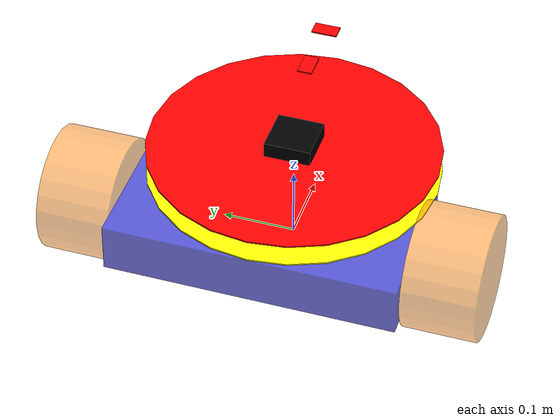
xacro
<?xml version="1.0"?>

<robot name="htbot">
  <!--include filename="$(find htbot)/urdf/kinect.xacro" /-->
  <property name="M_PI" value="3.14159"/>
  <material name="Blue">
    <color rgba="0.1 0.1 0.8 0.7"/>
  </material>
  <material name="Green">
    <color rgba="0.1 0.6 0.0 0.8"/>
  </material>
  <material name="Black">
    <color rgba="0.0 0.0 0.0 1.0"/>
  </material>
  <material name="Red">
    <color rgba="1.0 0.0 0.0 1.0"/>
  </material>
	<material name="Yellow">
    <color rgba="1.0 1.0 0.0 1.0"/>
  </material>

	<material name="Orange">
    <color rgba="1.0 0.5 0.0 0.5"/>
  </material>

  <!-- base_footprint is a fictitious link(frame) that is on the ground right below base_link origin, navigation stack depends on this frame -->
  <link name="base_footprint">
    <inertial>
      <mass value="0.0001" />
      <inertia ixx="0.0001" ixy="0.0" ixz="0.0"
              iyy="0.0001" iyz="0.0" izz="0.0001" />
    </inertial>
    <visual>
      <origin xyz="0 0 0" rpy="0 0 0" />
      <geometry>
        <box size="0.001 0.001 0.001" />
      </geometry>
      <material name="Orange" />
    </visual>
    <collision>
      <origin xyz="0 0 0.118" rpy="0 0 0" />
      <geometry>
       <box size="0.001 0.001 0.001" />
      </geometry>
    </collision>
  </link> <!-- base_footprint -->

  <joint name="base_footprint_joint" type="fixed">
    <origin xyz="0 0 0.118" rpy="0 0 0" />
    <parent link="base_footprint"/>
    <child link="base_link" />
  </joint>

  <link name="base_link">
    <inertial>
      <mass value="1" />
      <origin xyz="0 0 0" />
      <inertia ixx="1.0" ixy="0.0" ixz="0.0"
				iyy="1.0" iyz="0.0" izz="1.0" />
    </inertial>
    <visual>
      <origin xyz="0 0 0" rpy="0 0 0" />
      <geometry>
        <cylinder length="0.002" radius="0.200"/>
      </geometry>
      <material name="Yellow"/>
    </visual>
    <collision>
      <origin xyz="0 0 0.059" rpy="0 0 0" />
      <geometry>
        <cylinder length="0.12" radius="0.31"/>
      </geometry>
    </collision>
  </link> <!-- base_link -->

  <joint name="wheel_axis_joint" type="fixed">
    <origin xyz="-0.1 0 -0.035" rpy="0 0 0"/>
    <parent link="base_link"/>
    <child link="wheel_axis_link"/>
  </joint>

  <link name="wheel_axis_link">
    <inertial>
      <mass value="10" />
      <origin xyz="0 0 0" />
      <inertia ixx="1.0" ixy="0.0" ixz="0.0"
				iyy="1.0" iyz="0.0" izz="1.0" />
    </inertial>
    <visual>
      <origin xyz="0 0 0" rpy="0 0 0" />
      <geometry>
        <box size="0.2 0.4 0.068" />
      </geometry>
      <material name="Blue" />
    </visual>
    <collision>
      <geometry>
       <box size="0.3 0.6 0.12" />
      </geometry>
    </collision>
  </link> <!-- wheel_axis_link -->

  <joint name="left_wheel_joint" type="continuous">
    <origin xyz="0 0.25 0.0" rpy="0 0 0"/>
    <parent link="wheel_axis_link"/>
    <child link="left_wheel_link"/>
    <axis xyz="0 1 0"/>
  </joint>

  <link name="left_wheel_link">
    <inertial>
      <origin xyz="0 0 0"/>
      <mass value="0.1" />
      <inertia ixx="1.0" ixy="0.0" ixz="0.0"
        iyy="1.0" iyz="0.0" izz="1.0" />
    </inertial>
    <visual>
      <origin xyz="0 0 0" rpy="0 ${M_PI/2} ${M_PI/2}" />
      <geometry>
        <cylinder radius="0.085" length = "0.10"/>
      </geometry>
      <material name="Orange" />
    </visual>
    <collision>
      <origin xyz="0 0 0" rpy="0 ${M_PI/2} ${M_PI/2}" />
      <geometry>
        <cylinder radius="0.09" length = "0.2"/>
      </geometry>
    </collision>
  </link> <!-- left_wheel_link -->

  <joint name="right_wheel_joint" type="continuous">
    <origin xyz="0 -0.25 0.0" rpy="0 0 0"/>
    <parent link="wheel_axis_link"/>
    <child link="right_wheel_link"/>
    <axis xyz="0 1 0"/>
  </joint>

  <link name="right_wheel_link">
    <inertial>
      <origin xyz="0 0 0"/>
      <mass value="0.1" />
      <inertia ixx="1.0" ixy="0.0" ixz="0.0"
        iyy="1.0" iyz="0.0" izz="1.0" />
    </inertial>
    <visual>
      <origin xyz="0 0 0" rpy="0 ${M_PI/2} ${M_PI/2}" />
      <geometry>
        <cylinder radius="0.085" length = "0.10"/>
      </geometry>
      <material name="Orange" />
    </visual>
    <collision>
      <origin xyz="0 0 0" rpy="0 ${M_PI/2} ${M_PI/2}" />
      <geometry>
        <cylinder radius="0.09" length = "0.2"/>
      </geometry>
    </collision>
  </link> <!-- right_wheel_link -->

  <!-- fixed because there's no transmission -->
  <joint name="front_castor_joint" type="fixed">
    <origin xyz="0.132 0 -0.059" rpy="0 0 0"/>
    <parent link="base_link"/>
    <child link="front_wheel_link"/>
    <axis xyz="0 1 0"/>
  </joint>

  <link name="front_wheel_link">
    <inertial>
      <origin xyz="0 0 0" />
      <mass value="0.1" />
      <inertia ixx="1.0" ixy="0.0" ixz="0.0"
        iyy="1.0" iyz="0.0" izz="1.0" />
    </inertial>
    <visual>
      <origin xyz="0 0 0" rpy="0 ${M_PI/2} ${M_PI/2}"/>
      <geometry>
        <cylinder radius="0.059" length = "0.05"/>
      </geometry>
      <material name="Green"/>
    </visual>
    <collision>
      <origin xyz="0 0 0" rpy="0 ${M_PI/2} ${M_PI/2}"/>
      <geometry>
        <cylinder radius="0.059" length = "0.05"/>
      </geometry>
    </collision>
  </link> <!-- front_wheel_link -->

  <joint name="layer2_joint" type="fixed">
    <origin xyz="0 0 0.031" rpy="0 0 0" />
    <parent link="base_link"/>
    <child link="layer2_link" />
  </joint>

  <link name="layer2_link">
    <inertial>
      <mass value="0.1" />
      <origin xyz="0 0 0" />
      <inertia ixx="1.0" ixy="0.0" ixz="0.0"
        iyy="1.0" iyz="0.0" izz="1.0" />
    </inertial>
    <visual>
      <origin xyz=" 0 0 0 " rpy="0 0 0" />
      <geometry>
        <cylinder radius="0.200" length = "0.002"/>
      </geometry>
	  <material name="Red"/>
    </visual>
    <collision>
      <origin xyz="0.0 0.0 0.0" rpy="0 0 0" />
      <geometry>
        <box size="0.450 0.450 0.100"/>
      </geometry>
    </collision>
  </link> <!-- layer2_link -->

  <!-- kinect parent="layer2_link" x_loc="0.0" y_loc="0.0" z_loc="0.15" rr="0" rp="0" ry="0"/ -->

  <joint name="gyro_joint" type="fixed">
    <origin xyz="0 0 0.04" rpy="0 0 0" />
    <parent link="base_link" />
    <child link="gyro_link" />
  </joint>

  <link name="gyro_link">
    <visual>
      <geometry>
        <box size="0.064 0.064 0.026" />
      </geometry>
      <material name="Black" />
    </visual>
    <inertial>
      <mass value="0.075" />
      <origin xyz="0 0 0" />
      <inertia ixx="0.1" ixy="0.0" ixz="0.0"
        iyy="0.1" iyz="0.0" izz="0.1" />
    </inertial>
  </link>

  <joint name="laser_joint" type="fixed">
    <origin xyz="0.14 0 0.125" rpy="0 0 0" />
    <parent link="base_link" />
    <child link="laser" />
  </joint>

  <link name="laser">
    <visual>
      <geometry>
        <box size="0.02 0.035 0.002" />
      </geometry>
      <material name="Red" />
    </visual>
    <inertial>
      <mass value="0.001" />
      <origin xyz="0 0 0" />
      <inertia ixx="0.0001" ixy="0.0" ixz="0.0"
        iyy="0.0001" iyz="0.0"
        izz="0.0001" />
    </inertial>
  </link>

 <joint name="rpllaser_joint" type="fixed">
    <origin xyz="0.06 0.0 0.125" rpy="0 0 0" />
    <parent link="base_link" />
    <child link="rpllaser" />
  </joint>

  <link name="rpllaser">
    <visual>
      <geometry>
        <box size="0.035 0.02 0.002" />
      </geometry>
      <material name="Red" />
    </visual>
    <inertial>
      <mass value="0.001" />
      <origin xyz="0 0 0" />
      <inertia ixx="0.0001" ixy="0.0" ixz="0.0"
        iyy="0.0001" iyz="0.0"
        izz="0.0001" />
    </inertial>
  </link>

 <joint name="rprlaser_joint" type="fixed">
    <origin xyz="0.06 0.0 0.125" rpy="0 0 0" />
    <parent link="base_link" />
    <child link="rprlaser" />
  </joint>

  <link name="rprlaser">
    <visual>
      <geometry>
        <box size="0.035 0.02 0.002" />
      </geometry>
      <material name="Red" />
    </visual>
    <inertial>
      <mass value="0.001" />
      <origin xyz="0 0 0" />
      <inertia ixx="0.0001" ixy="0.0" ixz="0.0"
        iyy="0.0001" iyz="0.0"
        izz="0.0001" />
    </inertial>
  </link>

</robot>
